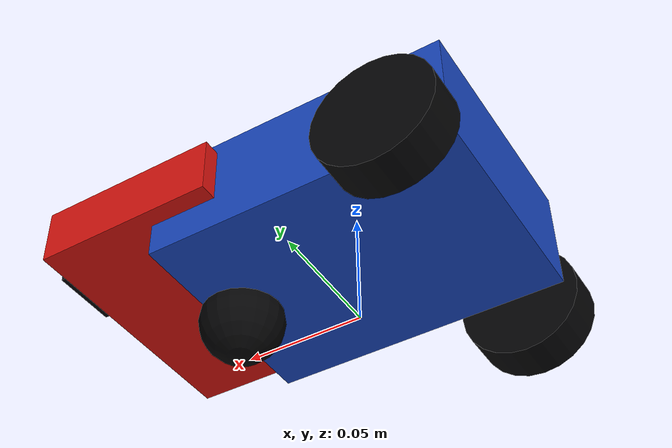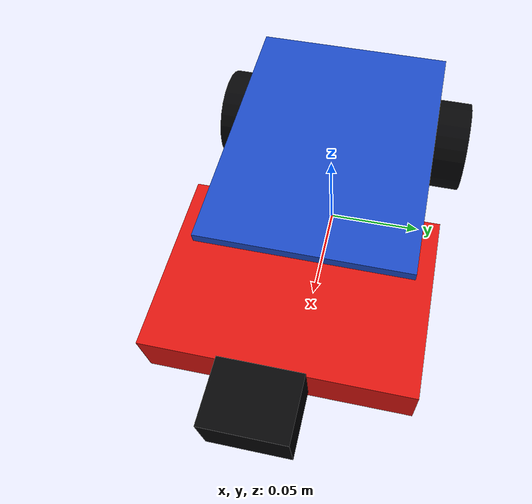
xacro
<?xml version="1.0"?>
<robot xmlns:xacro="http://www.ros.org/wiki/xacro" name="touch_car">
  <xacro:property name="body_length" value="0.13"/>
  <xacro:property name="body_width" value="0.10"/>
  <xacro:property name="body_height" value="0.045"/>
  <xacro:property name="wheel_radius" value="0.025"/>
  <xacro:property name="wheel_width" value="0.018"/>
  <xacro:property name="wheel_y" value="0.060"/>
  <xacro:property name="rear_x" value="-0.045"/>
  <xacro:property name="front_x" value="0.055"/>
  <xacro:property name="bumper_x" value="0.075"/>
  <xacro:property name="camera_x" value="0.135"/>

  <material name="blue">
    <color rgba="0.10 0.28 0.75 1.0"/>
  </material>
  <material name="dark">
    <color rgba="0.02 0.02 0.025 1.0"/>
  </material>
  <material name="bumper_red">
    <color rgba="0.85 0.08 0.06 1.0"/>
  </material>
  <material name="camera_dark">
    <color rgba="0.02 0.02 0.025 1.0"/>
  </material>

  <link name="base_footprint"/>

  <joint name="base_joint" type="fixed">
    <parent link="base_footprint"/>
    <child link="base_link"/>
    <origin xyz="0 0 ${wheel_radius + body_height / 2.0}" rpy="0 0 0"/>
  </joint>

  <link name="base_link">
    <inertial>
      <origin xyz="0 0 0"/>
      <mass value="0.45"/>
      <inertia ixx="0.00045" ixy="0" ixz="0" iyy="0.00075" iyz="0" izz="0.0010"/>
    </inertial>
    <visual>
      <origin xyz="0 0 0"/>
      <geometry>
        <box size="${body_length} ${body_width} ${body_height}"/>
      </geometry>
      <material name="blue"/>
    </visual>
    <collision>
      <origin xyz="0 0 0"/>
      <geometry>
        <box size="${body_length} ${body_width} ${body_height}"/>
      </geometry>
    </collision>
  </link>

  <xacro:macro name="drive_wheel" params="prefix y">
    <link name="${prefix}_wheel_link">
      <inertial>
        <origin xyz="0 0 0"/>
        <mass value="0.06"/>
        <inertia ixx="0.00002" ixy="0" ixz="0" iyy="0.00002" iyz="0" izz="0.00002"/>
      </inertial>
      <visual>
        <origin xyz="0 0 0" rpy="1.57079632679 0 0"/>
        <geometry>
          <cylinder radius="${wheel_radius}" length="${wheel_width}"/>
        </geometry>
        <material name="dark"/>
      </visual>
      <collision>
        <origin xyz="0 0 0" rpy="1.57079632679 0 0"/>
        <geometry>
          <cylinder radius="${wheel_radius}" length="${wheel_width}"/>
        </geometry>
      </collision>
    </link>
    <joint name="${prefix}_wheel_joint" type="continuous">
      <parent link="base_link"/>
      <child link="${prefix}_wheel_link"/>
      <origin xyz="${rear_x} ${y} ${-body_height / 2.0}" rpy="0 0 0"/>
      <axis xyz="0 1 0"/>
    </joint>
  </xacro:macro>

  <xacro:drive_wheel prefix="left" y="${wheel_y}"/>
  <xacro:drive_wheel prefix="right" y="${-wheel_y}"/>

  <link name="caster_wheel_link">
    <inertial>
      <origin xyz="0 0 0"/>
      <mass value="0.03"/>
      <inertia ixx="0.00001" ixy="0" ixz="0" iyy="0.00001" iyz="0" izz="0.00001"/>
    </inertial>
    <visual>
      <origin xyz="0 0 0"/>
      <geometry>
        <sphere radius="0.018"/>
      </geometry>
      <material name="dark"/>
    </visual>
    <collision>
      <origin xyz="0 0 0"/>
      <geometry>
        <sphere radius="0.018"/>
      </geometry>
    </collision>
  </link>
  <joint name="caster_wheel_joint" type="fixed">
    <parent link="base_link"/>
    <child link="caster_wheel_link"/>
    <origin xyz="${front_x} 0 ${-body_height / 2.0 - 0.004}" rpy="0 0 0"/>
  </joint>

  <link name="front_bumper_link">
    <inertial>
      <origin xyz="0 0 0"/>
      <mass value="0.02"/>
      <inertia ixx="0.00001" ixy="0" ixz="0" iyy="0.00001" iyz="0" izz="0.00001"/>
    </inertial>
    <visual>
      <origin xyz="0 0 0"/>
      <geometry>
        <box size="0.080 0.115 0.025"/>
      </geometry>
      <material name="bumper_red"/>
    </visual>
    <collision name="front_bumper_collision">
      <origin xyz="0 0 0"/>
      <geometry>
        <box size="0.080 0.115 0.025"/>
      </geometry>
    </collision>
  </link>
  <joint name="front_bumper_joint" type="fixed">
    <parent link="base_link"/>
    <child link="front_bumper_link"/>
    <origin xyz="${bumper_x} 0 0.005" rpy="0 0 0"/>
  </joint>

  <link name="front_camera_link">
    <inertial>
      <origin xyz="0 0 0"/>
      <mass value="0.01"/>
      <inertia ixx="0.000001" ixy="0" ixz="0" iyy="0.000001" iyz="0" izz="0.000001"/>
    </inertial>
    <visual>
      <origin xyz="0 0 0"/>
      <geometry>
        <box size="0.024 0.032 0.022"/>
      </geometry>
      <material name="camera_dark"/>
    </visual>
  </link>
  <joint name="front_camera_joint" type="fixed">
    <parent link="base_link"/>
    <child link="front_camera_link"/>
    <origin xyz="${camera_x} 0 0.0375" rpy="0 0 0"/>
  </joint>

  <gazebo reference="base_link">
    <material>Gazebo/Blue</material>
  </gazebo>
  <gazebo reference="left_wheel_link">
    <material>Gazebo/Black</material>
    <mu1>1.0</mu1>
    <mu2>1.0</mu2>
  </gazebo>
  <gazebo reference="right_wheel_link">
    <material>Gazebo/Black</material>
    <mu1>1.0</mu1>
    <mu2>1.0</mu2>
  </gazebo>
  <gazebo reference="caster_wheel_link">
    <material>Gazebo/Black</material>
    <mu1>0.05</mu1>
    <mu2>0.05</mu2>
  </gazebo>
  <gazebo reference="front_bumper_link">
    <material>Gazebo/Red</material>
    <sensor name="front_bumper_sensor" type="contact">
      <always_on>true</always_on>
      <update_rate>30</update_rate>
      <contact>
        <collision>base_footprint_fixed_joint_lump__front_bumper_collision_collision_2</collision>
        <topic>/touch_car/bumper_contacts</topic>
      </contact>
    </sensor>
  </gazebo>
  <gazebo reference="front_camera_link">
    <material>Gazebo/Black</material>
  </gazebo>

  <gazebo>
    <plugin filename="gz-sim-diff-drive-system" name="gz::sim::systems::DiffDrive">
      <left_joint>left_wheel_joint</left_joint>
      <right_joint>right_wheel_joint</right_joint>
      <wheel_separation>${2.0 * wheel_y}</wheel_separation>
      <wheel_radius>${wheel_radius}</wheel_radius>
      <odom_publish_frequency>20</odom_publish_frequency>
      <max_linear_acceleration>0.4</max_linear_acceleration>
      <min_linear_acceleration>-0.4</min_linear_acceleration>
      <max_angular_acceleration>2.0</max_angular_acceleration>
      <min_angular_acceleration>-2.0</min_angular_acceleration>
      <max_linear_velocity>0.15</max_linear_velocity>
      <min_linear_velocity>-0.15</min_linear_velocity>
      <max_angular_velocity>1.2</max_angular_velocity>
      <min_angular_velocity>-1.2</min_angular_velocity>
    </plugin>
  </gazebo>
</robot>
